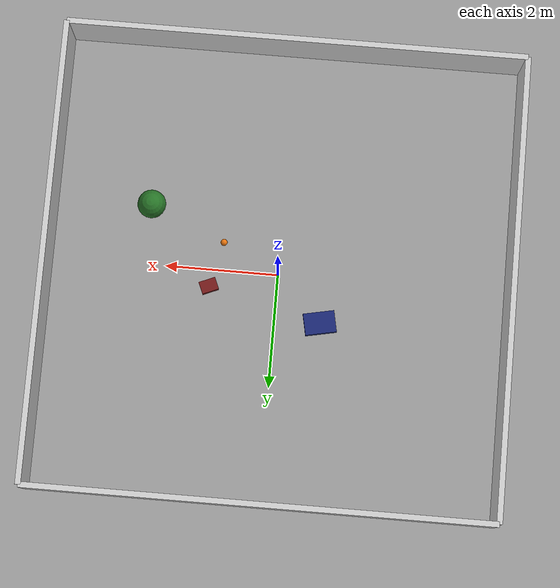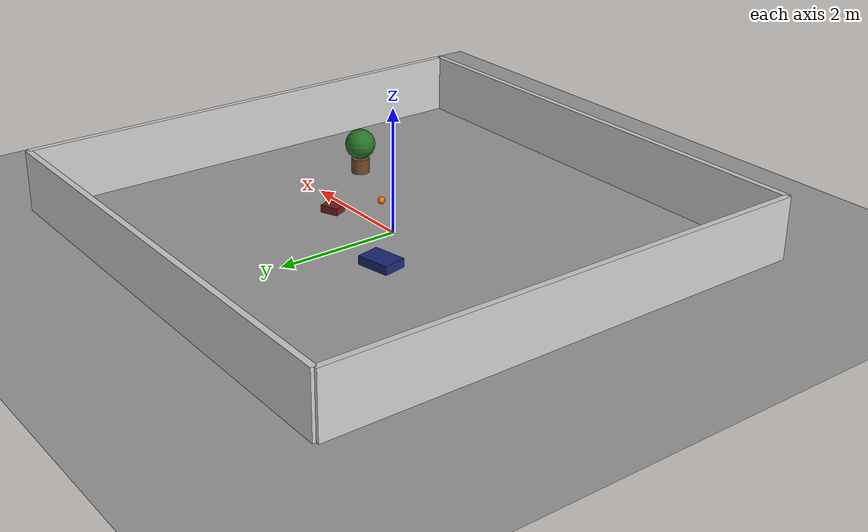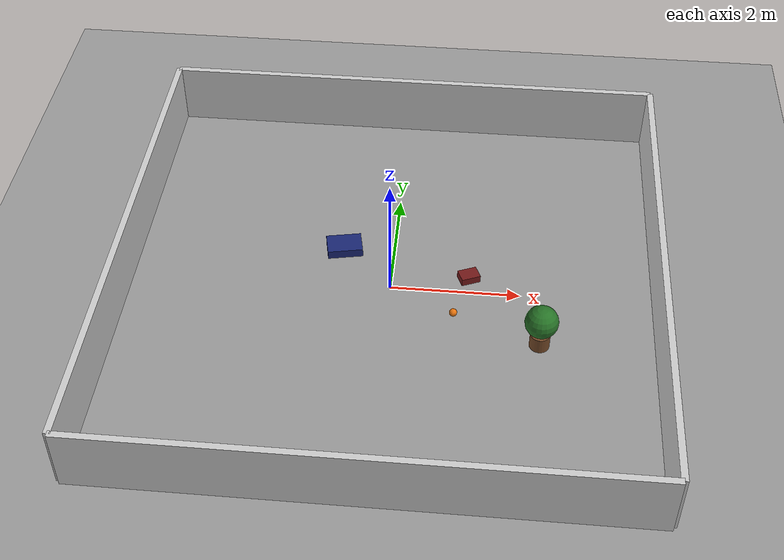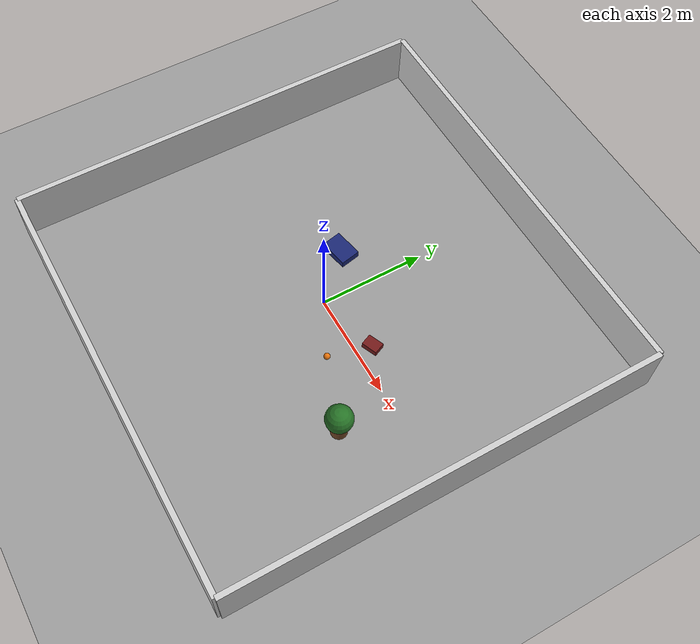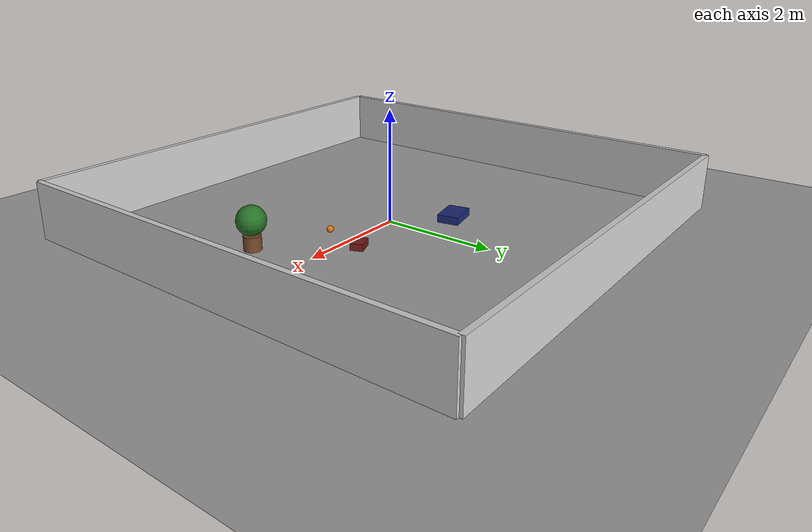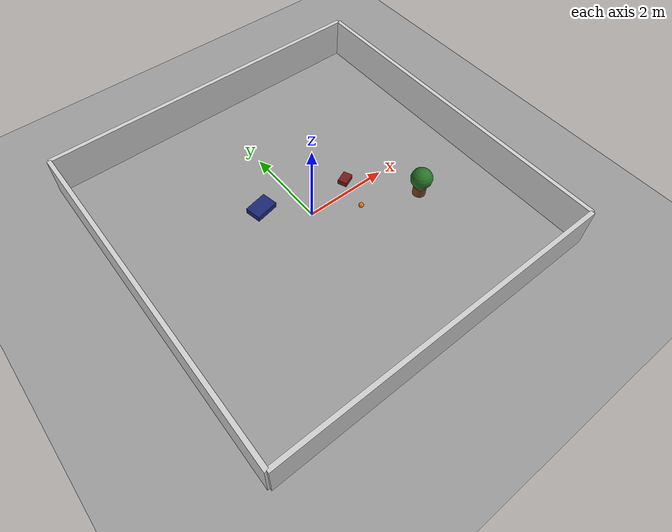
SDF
<sdf version="1.9">
 <world name="indoor_room">
  <physics name="default_physics" type="ode"><real_time_factor>1.0</real_time_factor></physics>
  <plugin filename="gz-sim-physics-system" name="gz::sim::systems::Physics"/>
  <plugin filename="gz-sim-user-commands-system" name="gz::sim::systems::UserCommands"/>
  <plugin filename="gz-sim-scene-broadcaster-system" name="gz::sim::systems::SceneBroadcaster"/>
  <plugin filename="gz-sim-sensors-system" name="gz::sim::systems::Sensors">
   <render_engine>ogre2</render_engine>
  </plugin>
  <plugin filename="gz-sim-imu-system" name="gz::sim::systems::Imu"/>
  <light type="directional" name="sun">
   <pose>0 0 10 0 0 0</pose>
   <diffuse>0.8 0.8 0.8 1</diffuse>
   <specular>0.2 0.2 0.2 1</specular>
   <attenuation>
    <range>1000</range>
    <constant>0.9</constant>
    <linear>0.01</linear>
    <quadratic>0.001</quadratic>
   </attenuation>
   <direction>-0.5 0.1 -0.9</direction>
  </light>
  <model name="ground_plane">
   <static>true</static>
   <link name="link">
    <collision name="collision">
     <geometry><plane><normal>0 0 1</normal><size>8 8</size></plane></geometry>
    </collision>
    <visual name="visual">
     <geometry><plane><normal>0 0 1</normal><size>8 8</size></plane></geometry>
     <material><ambient>0.6 0.6 0.6 1</ambient><diffuse>0.6 0.6 0.6 1</diffuse></material>
    </visual>
   </link>
  </model>
  <model name="wall_north">
   <static>true</static>
   <pose>0 4.05 0.5 0 0 0</pose>
   <link name="link">
    <collision name="collision"><geometry><box><size>8.1 0.1 1.0</size></box></geometry></collision>
    <visual name="visual">
     <geometry><box><size>8.1 0.1 1.0</size></box></geometry>
     <material><ambient>0.8 0.8 0.8 1</ambient><diffuse>0.8 0.8 0.8 1</diffuse></material>
    </visual>
   </link>
  </model>
  <model name="wall_south">
   <static>true</static>
   <pose>0 -4.05 0.5 0 0 0</pose>
   <link name="link">
    <collision name="collision"><geometry><box><size>8.1 0.1 1.0</size></box></geometry></collision>
    <visual name="visual">
     <geometry><box><size>8.1 0.1 1.0</size></box></geometry>
     <material><ambient>0.8 0.8 0.8 1</ambient><diffuse>0.8 0.8 0.8 1</diffuse></material>
    </visual>
   </link>
  </model>
  <model name="wall_east">
   <static>true</static>
   <pose>4.05 0 0.5 0 0 0</pose>
   <link name="link">
    <collision name="collision"><geometry><box><size>0.1 8.1 1.0</size></box></geometry></collision>
    <visual name="visual">
     <geometry><box><size>0.1 8.1 1.0</size></box></geometry>
     <material><ambient>0.8 0.8 0.8 1</ambient><diffuse>0.8 0.8 0.8 1</diffuse></material>
    </visual>
   </link>
  </model>
  <model name="wall_west">
   <static>true</static>
   <pose>-4.05 0 0.5 0 0 0</pose>
   <link name="link">
    <collision name="collision"><geometry><box><size>0.1 8.1 1.0</size></box></geometry></collision>
    <visual name="visual">
     <geometry><box><size>0.1 8.1 1.0</size></box></geometry>
     <material><ambient>0.8 0.8 0.8 1</ambient><diffuse>0.8 0.8 0.8 1</diffuse></material>
    </visual>
   </link>
  </model>
  <model name="potted_plant_1">
   <static>true</static>
   <pose>2.3 -1.0 0 0 0 0</pose>
   <plugin filename="gz-sim-label-system" name="gz::sim::systems::Label"><label>8</label></plugin>
   <link name="link">
    <collision name="pot_collision">
     <pose>0 0 0.125 0 0 0</pose>
     <geometry><cylinder><radius>0.15</radius><length>0.25</length></cylinder></geometry>
    </collision>
    <visual name="pot_visual">
     <pose>0 0 0.125 0 0 0</pose>
     <geometry><cylinder><radius>0.15</radius><length>0.25</length></cylinder></geometry>
     <material><ambient>0.45 0.28 0.15 1</ambient><diffuse>0.45 0.28 0.15 1</diffuse></material>
    </visual>
    <collision name="foliage_collision">
     <pose>0 0 0.5 0 0 0</pose>
     <geometry><sphere><radius>0.25</radius></sphere></geometry>
    </collision>
    <visual name="foliage_visual">
     <pose>0 0 0.5 0 0 0</pose>
     <geometry><sphere><radius>0.25</radius></sphere></geometry>
     <material><ambient>0.15 0.45 0.15 1</ambient><diffuse>0.15 0.45 0.15 1</diffuse></material>
    </visual>
   </link>
  </model>
  <model name="low_backpack">
   <static>true</static>
   <pose>1.2 0.3 0.06 0 0 0.4</pose>
   <plugin filename="gz-sim-label-system" name="gz::sim::systems::Label"><label>1</label></plugin>
   <link name="link">
    <collision name="collision"><geometry><box><size>0.30 0.22 0.12</size></box></geometry></collision>
    <visual name="visual">
     <geometry><box><size>0.30 0.22 0.12</size></box></geometry>
     <material><ambient>0.45 0.1 0.1 1</ambient><diffuse>0.45 0.1 0.1 1</diffuse></material>
    </visual>
   </link>
  </model>
  <model name="low_suitcase">
   <static>true</static>
   <pose>-0.8 0.8 0.07 0 0 0.2</pose>
   <plugin filename="gz-sim-label-system" name="gz::sim::systems::Label"><label>2</label></plugin>
   <link name="link">
    <collision name="collision"><geometry><box><size>0.55 0.38 0.14</size></box></geometry></collision>
    <visual name="visual">
     <geometry><box><size>0.55 0.38 0.14</size></box></geometry>
     <material><ambient>0.1 0.15 0.45 1</ambient><diffuse>0.1 0.15 0.45 1</diffuse></material>
    </visual>
   </link>
  </model>
  <model name="low_sports_ball">
   <static>true</static>
   <pose>1.0 -0.5 0.06 0 0 0</pose>
   <plugin filename="gz-sim-label-system" name="gz::sim::systems::Label"><label>3</label></plugin>
   <link name="link">
    <collision name="collision"><geometry><sphere><radius>0.06</radius></sphere></geometry></collision>
    <visual name="visual">
     <geometry><sphere><radius>0.06</radius></sphere></geometry>
     <material><ambient>0.9 0.45 0.05 1</ambient><diffuse>0.9 0.45 0.05 1</diffuse></material>
    </visual>
   </link>
  </model>
 </world>
</sdf>
